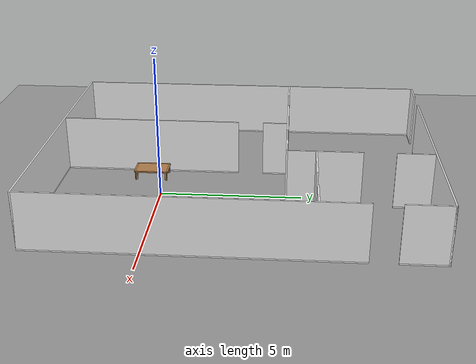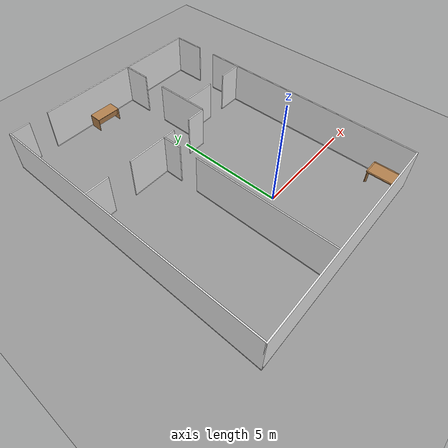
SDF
<sdf version="1.6">
 <world name="default">
  <light name="sun" type="directional">
   <pose>0 0 10 0 -0 0</pose>
   <diffuse>0.8 0.8 0.8 1</diffuse>
   <specular>0.2 0.2 0.2 1</specular>
   <attenuation>
    <range>1000</range>
    <constant>0.9</constant>
    <linear>0.01</linear>
    <quadratic>0.001</quadratic>
   </attenuation>
   <direction>-0.5 0.1 -0.9</direction>
  </light>
  <model name="ground_plane">
   <static>1</static>
   <link name="link">
    <collision name="collision">
     <geometry><plane><normal>0 0 1</normal><size>100 100</size></plane></geometry>
     <surface>
      <contact><collide_bitmask>65535</collide_bitmask></contact>
      <friction><ode><mu>100</mu><mu2>50</mu2></ode></friction>
     </surface>
    </collision>
    <visual name="visual">
     <cast_shadows>0</cast_shadows>
     <geometry><plane><normal>0 0 1</normal><size>100 100</size></plane></geometry>
     <material>
      <script><uri>file://media/materials/scripts/gazebo.material</uri><name>Gazebo/Grey</name></script>
     </material>
    </visual>
   </link>
  </model>
  <gravity>0 0 -9.8</gravity>
  <magnetic_field>6e-06 2.3e-05 -4.2e-05</magnetic_field>
  <atmosphere type="adiabatic"/>
  <physics name="default_physics" default="0" type="ode">
   <max_step_size>0.001</max_step_size>
   <real_time_factor>1</real_time_factor>
   <real_time_update_rate>1000</real_time_update_rate>
  </physics>
  <scene><ambient>0.4 0.4 0.4 1</ambient><background>0.7 0.7 0.7 1</background><shadows>1</shadows></scene>
  <audio><device>default</device></audio>
  <spherical_coordinates>
   <surface_model>EARTH_WGS84</surface_model>
   <latitude_deg>0</latitude_deg>
   <longitude_deg>0</longitude_deg>
   <elevation>0</elevation>
   <heading_deg>0</heading_deg>
  </spherical_coordinates>
  <model name="full_inside_wall">
   <link name="link">
    <inertial>
     <mass>50</mass>
     <inertia><ixx>1</ixx><ixy>0</ixy><ixz>0</ixz><iyy>1</iyy><iyz>0</iyz><izz>1</izz></inertia>
    </inertial>
    <visual name="x05y01_08_bottom_frame">
     <pose>4.075 3.215 0.05 0 -0 0</pose>
     <geometry><box><size>0.055 6.43 0.1</size></box></geometry>
     <material>
      <script><uri>model://base_materials/color/scripts</uri><name>hsr_color/white</name></script>
     </material>
    </visual>
    <collision name="x05y01_08_collision_bottom_frame">
     <pose>4.075 3.215 0.05 0 -0 0</pose>
     <geometry><box><size>0.055 6.43 0.1</size></box></geometry>
    </collision>
    <visual name="x05y01_08_wall">
     <pose>4.075 3.215 1.095 0 -0 0</pose>
     <geometry><box><size>0.055 6.43 1.99</size></box></geometry>
     <material>
      <script>
       <uri>model://base_materials/wall/scripts</uri>
       <uri>model://base_materials/wall/textures</uri>
       <name>wall/white_noise</name>
      </script>
     </material>
    </visual>
    <collision name="x05y01_08_collision_wall">
     <pose>4.075 3.215 1.095 0 -0 0</pose>
     <geometry><box><size>0.055 6.43 1.99</size></box></geometry>
    </collision>
    <visual name="x05y10_bottom_frame">
     <pose>4.075 7.78 0.05 0 -0 0</pose>
     <geometry><box><size>0.055 0.9 0.1</size></box></geometry>
     <material>
      <script><uri>model://base_materials/color/scripts</uri><name>hsr_color/white</name></script>
     </material>
    </visual>
    <collision name="x05y10_collision_bottom_frame">
     <pose>4.075 7.78 0.05 0 -0 0</pose>
     <geometry><box><size>0.055 0.9 0.1</size></box></geometry>
    </collision>
    <visual name="x05y10_wall">
     <pose>4.075 7.78 1.095 0 -0 0</pose>
     <geometry><box><size>0.055 0.9 1.99</size></box></geometry>
     <material>
      <script>
       <uri>model://base_materials/wall/scripts</uri>
       <uri>model://base_materials/wall/textures</uri>
       <name>wall/white_noise</name>
      </script>
     </material>
    </visual>
    <collision name="x05y10_collision_wall">
     <pose>4.075 7.78 1.095 0 -0 0</pose>
     <geometry><box><size>0.055 0.9 1.99</size></box></geometry>
    </collision>
    <visual name="x01_02_y09_bottom_frame">
     <pose>0.55 8.23 0.05 0 -0 1.5708</pose>
     <geometry><box><size>0.055 1.1 0.1</size></box></geometry>
     <material>
      <script><uri>model://base_materials/color/scripts</uri><name>hsr_color/white</name></script>
     </material>
    </visual>
    <collision name="x01_02_y09_collision_bottom_frame">
     <pose>0.55 8.23 0.05 0 -0 1.5708</pose>
     <geometry><box><size>0.055 1.1 0.1</size></box></geometry>
    </collision>
    <visual name="x01_02_y09_wall">
     <pose>0.55 8.23 1.095 0 -0 1.5708</pose>
     <geometry><box><size>0.055 1.1 1.99</size></box></geometry>
     <material>
      <script>
       <uri>model://base_materials/wall/scripts</uri>
       <uri>model://base_materials/wall/textures</uri>
       <name>wall/white_noise</name>
      </script>
     </material>
    </visual>
    <collision name="x01_02_y09_collision_wall">
     <pose>0.55 8.23 1.095 0 -0 1.5708</pose>
     <geometry><box><size>0.055 1.1 1.99</size></box></geometry>
    </collision>
    <visual name="x04_07_y09_bottom_frame">
     <pose>3.42 8.23 0.05 0 -0 1.5708</pose>
     <geometry><box><size>0.055 2.44 0.1</size></box></geometry>
     <material>
      <script><uri>model://base_materials/color/scripts</uri><name>hsr_color/white</name></script>
     </material>
    </visual>
    <collision name="x04_07_y09_collision_bottom_frame">
     <pose>3.42 8.23 0.05 0 -0 1.5708</pose>
     <geometry><box><size>0.055 2.44 0.1</size></box></geometry>
    </collision>
    <visual name="x04_07_y09_wall">
     <pose>3.42 8.23 1.095 0 -0 1.5708</pose>
     <geometry><box><size>0.055 2.44 1.99</size></box></geometry>
     <material>
      <script>
       <uri>model://base_materials/wall/scripts</uri>
       <uri>model://base_materials/wall/textures</uri>
       <name>wall/white_noise</name>
      </script>
     </material>
    </visual>
    <collision name="x04_07_y09_collision_wall">
     <pose>3.42 8.23 1.095 0 -0 1.5708</pose>
     <geometry><box><size>0.055 2.44 1.99</size></box></geometry>
    </collision>
    <visual name="x08y10a_bottom_frame">
     <pose>5.9925 8.23 0.05 0 -0 1.5708</pose>
     <geometry><box><size>0.055 0.9 0.1</size></box></geometry>
     <material>
      <script><uri>model://base_materials/color/scripts</uri><name>hsr_color/white</name></script>
     </material>
    </visual>
    <collision name="x08y10a_collision_bottom_frame">
     <pose>5.9925 8.23 0.05 0 -0 1.5708</pose>
     <geometry><box><size>0.055 0.9 0.1</size></box></geometry>
    </collision>
    <visual name="x08y10a_wall">
     <pose>5.9925 8.23 1.095 0 -0 1.5708</pose>
     <geometry><box><size>0.055 0.9 1.99</size></box></geometry>
     <material>
      <script>
       <uri>model://base_materials/wall/scripts</uri>
       <uri>model://base_materials/wall/textures</uri>
       <name>wall/white_noise</name>
      </script>
     </material>
    </visual>
    <collision name="x08y10a_collision_wall">
     <pose>5.9925 8.23 1.095 0 -0 1.5708</pose>
     <geometry><box><size>0.055 0.9 1.99</size></box></geometry>
    </collision>
    <visual name="x08y10a_bottom_frame">
     <pose>5.9925 8.23 0.05 0 -0 1.5708</pose>
     <geometry><box><size>0.055 0.9 0.1</size></box></geometry>
     <material>
      <script><uri>model://base_materials/color/scripts</uri><name>hsr_color/white</name></script>
     </material>
    </visual>
    <collision name="x08y10a_collision_bottom_frame">
     <pose>5.9925 8.23 0.05 0 -0 1.5708</pose>
     <geometry><box><size>0.055 0.9 0.1</size></box></geometry>
    </collision>
    <visual name="x08y10a_wall">
     <pose>5.9925 8.23 1.095 0 -0 1.5708</pose>
     <geometry><box><size>0.055 0.9 1.99</size></box></geometry>
     <material>
      <script>
       <uri>model://base_materials/wall/scripts</uri>
       <uri>model://base_materials/wall/textures</uri>
       <name>wall/white_noise</name>
      </script>
     </material>
    </visual>
    <collision name="x08y10a_collision_wall">
     <pose>5.9925 8.23 1.095 0 -0 1.5708</pose>
     <geometry><box><size>0.055 0.9 1.99</size></box></geometry>
    </collision>
    <visual name="x08y14_15_bottom_frame">
     <pose>6.47 12.54 0.05 0 -0 0</pose>
     <geometry><box><size>0.055 1.28 0.1</size></box></geometry>
     <material>
      <script><uri>model://base_materials/color/scripts</uri><name>hsr_color/white</name></script>
     </material>
    </visual>
    <collision name="x08y14_15_collision_bottom_frame">
     <pose>6.47 12.54 0.05 0 -0 0</pose>
     <geometry><box><size>0.055 1.28 0.1</size></box></geometry>
    </collision>
    <visual name="x08y14_15_wall">
     <pose>6.47 12.54 1.095 0 -0 0</pose>
     <geometry><box><size>0.055 1.28 1.99</size></box></geometry>
     <material>
      <script>
       <uri>model://base_materials/wall/scripts</uri>
       <uri>model://base_materials/wall/textures</uri>
       <name>wall/white_noise</name>
      </script>
     </material>
    </visual>
    <collision name="x08y14_15_collision_wall">
     <pose>6.47 12.54 1.095 0 -0 0</pose>
     <geometry><box><size>0.055 1.28 1.99</size></box></geometry>
    </collision>
    <visual name="x08y10b_12_bottom_frame">
     <pose>6.47 9.52875 0.05 0 -0 0</pose>
     <geometry><box><size>0.055 2.5425 0.1</size></box></geometry>
     <material>
      <script><uri>model://base_materials/color/scripts</uri><name>hsr_color/white</name></script>
     </material>
    </visual>
    <collision name="x08y10b_12_collision_bottom_frame">
     <pose>6.47 9.52875 0.05 0 -0 0</pose>
     <geometry><box><size>0.055 2.5425 0.1</size></box></geometry>
    </collision>
    <visual name="x08y10b_12_wall">
     <pose>6.47 9.52875 1.095 0 -0 0</pose>
     <geometry><box><size>0.055 2.5425 1.99</size></box></geometry>
     <material>
      <script>
       <uri>model://base_materials/wall/scripts</uri>
       <uri>model://base_materials/wall/textures</uri>
       <name>wall/white_noise</name>
      </script>
     </material>
    </visual>
    <collision name="x08y10b_12_collision_wall">
     <pose>6.47 9.52875 1.095 0 -0 0</pose>
     <geometry><box><size>0.055 2.5425 1.99</size></box></geometry>
    </collision>
    <visual name="x08_09y11b_bottom_frame">
     <pose>7.284 9.23 0.05 0 -0 1.5708</pose>
     <geometry><box><size>0.055 1.632 0.1</size></box></geometry>
     <material>
      <script><uri>model://base_materials/color/scripts</uri><name>hsr_color/white</name></script>
     </material>
    </visual>
    <collision name="x08_09y11b_collision_bottom_frame">
     <pose>7.284 9.23 0.05 0 -0 1.5708</pose>
     <geometry><box><size>0.055 1.632 0.1</size></box></geometry>
    </collision>
    <visual name="x08_09y11b_wall">
     <pose>7.284 9.23 1.095 0 -0 1.5708</pose>
     <geometry><box><size>0.055 1.632 1.99</size></box></geometry>
     <material>
      <script>
       <uri>model://base_materials/wall/scripts</uri>
       <uri>model://base_materials/wall/textures</uri>
       <name>wall/white_noise</name>
      </script>
     </material>
    </visual>
    <collision name="x08_09y11b_collision_wall">
     <pose>7.284 9.23 1.095 0 -0 1.5708</pose>
     <geometry><box><size>0.055 1.632 1.99</size></box></geometry>
    </collision>
    <visual name="x11_12y11_bottom_frame">
     <pose>9.5375 9.23 0.05 0 -0 1.5708</pose>
     <geometry><box><size>0.055 1.075 0.1</size></box></geometry>
     <material>
      <script><uri>model://base_materials/color/scripts</uri><name>hsr_color/white</name></script>
     </material>
    </visual>
    <collision name="x11_12y11_collision_bottom_frame">
     <pose>9.5375 9.23 0.05 0 -0 1.5708</pose>
     <geometry><box><size>0.055 1.075 0.1</size></box></geometry>
    </collision>
    <visual name="x11_12y11_wall">
     <pose>9.5375 9.23 1.095 0 -0 1.5708</pose>
     <geometry><box><size>0.055 1.075 1.99</size></box></geometry>
     <material>
      <script>
       <uri>model://base_materials/wall/scripts</uri>
       <uri>model://base_materials/wall/textures</uri>
       <name>wall/white_noise</name>
      </script>
     </material>
    </visual>
    <collision name="x11_12y11_collision_wall">
     <pose>9.5375 9.23 1.095 0 -0 1.5708</pose>
     <geometry><box><size>0.055 1.075 1.99</size></box></geometry>
    </collision>
    <velocity_decay><linear>0</linear><angular>0</angular></velocity_decay>
   </link>
   <static>1</static>
   <pose>-5.88444 -3.76717 0 0 -0 0</pose>
  </model>
  <model name="full_outside_wall">
   <link name="link">
    <inertial>
     <mass>50</mass>
     <inertia><ixx>1</ixx><ixy>0</ixy><ixz>0</ixz><iyy>1</iyy><iyz>0</iyz><izz>1</izz></inertia>
    </inertial>
    <visual name="x00_13y00_bottom_frame">
     <pose>5.0375 -0.0275 0.05 0 -0 0</pose>
     <geometry><box><size>10.185 0.055 0.1</size></box></geometry>
     <material>
      <script><uri>model://base_materials/color/scripts</uri><name>hsr_color/white</name></script>
     </material>
    </visual>
    <collision name="x00_13y00_collision_bottom_frame">
     <pose>5.0375 -0.0275 0.05 0 -0 0</pose>
     <geometry><box><size>10.185 0.055 0.1</size></box></geometry>
    </collision>
    <visual name="wall_x00_13y00">
     <pose>5.0375 -0.0275 1.095 0 -0 0</pose>
     <geometry><box><size>10.185 0.055 1.99</size></box></geometry>
     <material>
      <script>
       <uri>model://base_materials/wall/scripts</uri>
       <uri>model://base_materials/wall/textures</uri>
       <name>wall/white_noise</name>
      </script>
     </material>
    </visual>
    <collision name="wall_x00_13y00">
     <pose>5.0375 -0.002 1.095 0 -0 0</pose>
     <geometry><box><size>10.08 0.055 1.99</size></box></geometry>
    </collision>
    <visual name="x00y00_15_bottom_frame">
     <pose>-0.0275 6.59 0.05 0 -0 0</pose>
     <geometry><box><size>0.055 13.29 0.1</size></box></geometry>
     <material>
      <script><uri>model://base_materials/color/scripts</uri><name>hsr_color/white</name></script>
     </material>
    </visual>
    <collision name="x00y00_15_collision_bottom_frame">
     <pose>-0.0275 6.59 0.05 0 -0 0</pose>
     <geometry><box><size>0.055 13.29 0.1</size></box></geometry>
    </collision>
    <visual name="wall_x00y00_15">
     <pose>-0.0275 6.59 1.095 0 -0 0</pose>
     <geometry><box><size>0.055 13.29 1.99</size></box></geometry>
     <material>
      <script>
       <uri>model://base_materials/wall/scripts</uri>
       <uri>model://base_materials/wall/textures</uri>
       <name>wall/white_noise</name>
      </script>
     </material>
    </visual>
    <collision name="wall_x00y00_x00y15">
     <pose>-0.002 6.59 1.095 0 -0 0</pose>
     <geometry><box><size>0.002 13.29 1.99</size></box></geometry>
    </collision>
    <visual name="x13y00_12_bottom_frame">
     <pose>10.1025 5.3725 0.05 0 -0 0</pose>
     <geometry><box><size>0.055 10.855 0.1</size></box></geometry>
     <material>
      <script><uri>model://base_materials/color/scripts</uri><name>hsr_color/white</name></script>
     </material>
    </visual>
    <collision name="x13y00_12_collision_bottom_frame">
     <pose>10.1025 5.3725 0.05 0 -0 0</pose>
     <geometry><box><size>0.055 10.855 0.1</size></box></geometry>
    </collision>
    <visual name="wall_x13y00_12">
     <pose>10.1025 5.3725 1.095 0 -0 0</pose>
     <geometry><box><size>0.055 10.855 1.99</size></box></geometry>
     <material>
      <script>
       <uri>model://base_materials/wall/scripts</uri>
       <uri>model://base_materials/wall/textures</uri>
       <name>wall/white_noise</name>
      </script>
     </material>
    </visual>
    <collision name="wall_x13y00_12">
     <pose>10.1025 5.3725 1.095 0 -0 0</pose>
     <geometry><box><size>0.055 10.855 1.99</size></box></geometry>
    </collision>
    <visual name="x13y14_16_bottom_frame">
     <pose>10.1025 12.4675 0.05 0 -0 0</pose>
     <geometry><box><size>0.055 1.535 0.1</size></box></geometry>
     <material>
      <script><uri>model://base_materials/color/scripts</uri><name>hsr_color/white</name></script>
     </material>
    </visual>
    <collision name="x13y14_16_collision_bottom_frame">
     <pose>10.1025 12.4675 0.05 0 -0 0</pose>
     <geometry><box><size>0.055 1.535 0.1</size></box></geometry>
    </collision>
    <visual name="wall_x13y14_x13y16">
     <pose>10.1025 12.4675 1.095 0 -0 0</pose>
     <geometry><box><size>0.055 1.535 1.99</size></box></geometry>
     <material>
      <script>
       <uri>model://base_materials/wall/scripts</uri>
       <uri>model://base_materials/wall/textures</uri>
       <name>wall/white_noise</name>
      </script>
     </material>
    </visual>
    <collision name="wall_x13y14_x13y16">
     <pose>10.1025 12.4675 1.095 0 -0 0</pose>
     <geometry><box><size>0.055 1.535 1.99</size></box></geometry>
    </collision>
    <visual name="x00_01y16_bottom_frame">
     <pose>0.4225 13.2075 0.05 0 -0 0</pose>
     <geometry><box><size>0.955 0.055 0.1</size></box></geometry>
     <material>
      <script><uri>model://base_materials/color/scripts</uri><name>hsr_color/white</name></script>
     </material>
    </visual>
    <collision name="x00_01y16_collision_bottom_frame">
     <pose>0.4225 13.2075 0.05 0 -0 0</pose>
     <geometry><box><size>0.955 0.055 0.1</size></box></geometry>
    </collision>
    <visual name="wall_x00_01y16">
     <pose>0.4225 13.2075 1.095 0 -0 0</pose>
     <geometry><box><size>0.955 0.055 1.99</size></box></geometry>
     <material>
      <script>
       <uri>model://base_materials/wall/scripts</uri>
       <uri>model://base_materials/wall/textures</uri>
       <name>wall/white_noise</name>
      </script>
     </material>
    </visual>
    <collision name="wall_x00_x01y16">
     <pose>0.4225 13.2075 1.095 0 -0 0</pose>
     <geometry><box><size>0.955 0.055 1.99</size></box></geometry>
    </collision>
    <visual name="x03_13y16_bottom_frame">
     <pose>5.965 13.2075 0.05 0 -0 0</pose>
     <geometry><box><size>8.33 0.05 0.1</size></box></geometry>
     <material>
      <script><uri>model://base_materials/color/scripts</uri><name>hsr_color/white</name></script>
     </material>
    </visual>
    <collision name="x03_13y16_collision_bottom_frame">
     <pose>5.965 13.2075 0.05 0 -0 0</pose>
     <geometry><box><size>8.33 0.05 0.1</size></box></geometry>
    </collision>
    <visual name="wall_x03_13y16">
     <pose>5.965 13.2075 1.095 0 -0 0</pose>
     <geometry><box><size>8.33 0.055 1.99</size></box></geometry>
     <material>
      <script>
       <uri>model://base_materials/wall/scripts</uri>
       <uri>model://base_materials/wall/textures</uri>
       <name>wall/white_noise</name>
      </script>
     </material>
    </visual>
    <collision name="wall_x03_13y16">
     <pose>5.965 13.2075 1.095 0 -0 0</pose>
     <geometry><box><size>8.33 0.055 1.99</size></box></geometry>
    </collision>
    <velocity_decay><linear>0</linear><angular>0</angular></velocity_decay>
   </link>
   <static>1</static>
   <pose>-5.88444 -3.76717 0 0 -0 0</pose>
  </model>
  <model name="ground_plane_0">
   <static>1</static>
   <link name="link">
    <collision name="collision">
     <geometry><plane><normal>0 0 1</normal><size>100 100</size></plane></geometry>
     <surface>
      <contact><collide_bitmask>65535</collide_bitmask></contact>
      <friction><ode><mu>100</mu><mu2>50</mu2></ode></friction>
     </surface>
    </collision>
    <visual name="visual">
     <cast_shadows>0</cast_shadows>
     <geometry><plane><normal>0 0 1</normal><size>100 100</size></plane></geometry>
     <material>
      <script><uri>file://media/materials/scripts/gazebo.material</uri><name>Gazebo/Grey</name></script>
     </material>
    </visual>
   </link>
   <pose>-0.601053 -1.96959 0 0 -0 0</pose>
  </model>
  <model name="kitchen_table">
   <link name="link">
    <inertial>
     <mass>10</mass>
     <inertia><ixx>1</ixx><ixy>0</ixy><ixz>0</ixz><iyy>1</iyy><iyz>0</iyz><izz>1</izz></inertia>
    </inertial>
    <visual name="center_board">
     <pose>0 0 0.68 0 -0 0</pose>
     <geometry><box><size>0.68 1.13 0.04</size></box></geometry>
     <material>
      <script><uri>model://base_materials/wood/scripts/wood.material</uri><name>base_materials/wood</name></script>
     </material>
    </visual>
    <collision name="collision_center_board">
     <pose>0 0 0.68 0 -0 0</pose>
     <geometry><box><size>0.68 1.13 0.04</size></box></geometry>
    </collision>
    <visual name="front_board">
     <pose>0.37 0 0.68 0 -0 0</pose>
     <geometry><box><size>0.06 1.13 0.04</size></box></geometry>
     <material>
      <script><uri>model://base_materials/wood/scripts/wood.material</uri><name>base_materials/wood</name></script>
     </material>
    </visual>
    <collision name="collision_front_board">
     <pose>0.37 0 0.68 0 -0 0</pose>
     <geometry><box><size>0.06 1.13 0.04</size></box></geometry>
    </collision>
    <visual name="back_board">
     <pose>-0.37 0 0.68 0 -0 0</pose>
     <geometry><box><size>0.06 1.13 0.04</size></box></geometry>
     <material>
      <script><uri>model://base_materials/wood/scripts/wood.material</uri><name>base_materials/wood</name></script>
     </material>
    </visual>
    <collision name="collision_back_board">
     <pose>-0.37 0 0.68 0 -0 0</pose>
     <geometry><box><size>0.06 1.13 0.04</size></box></geometry>
    </collision>
    <visual name="right_board">
     <pose>0 0.595 0.68 0 -0 0</pose>
     <geometry><box><size>0.68 0.06 0.04</size></box></geometry>
     <material>
      <script><uri>model://base_materials/wood/scripts/wood.material</uri><name>base_materials/wood</name></script>
     </material>
    </visual>
    <collision name="collision_right_board">
     <pose>0 0.595 0.68 0 -0 0</pose>
     <geometry><box><size>0.68 0.06 0.04</size></box></geometry>
    </collision>
    <visual name="left_board">
     <pose>0 -0.595 0.68 0 -0 0</pose>
     <geometry><box><size>0.68 0.06 0.04</size></box></geometry>
     <material>
      <script><uri>model://base_materials/wood/scripts/wood.material</uri><name>base_materials/wood</name></script>
     </material>
    </visual>
    <collision name="collision_left_board">
     <pose>0 -0.595 0.68 0 -0 0</pose>
     <geometry><box><size>0.68 0.06 0.04</size></box></geometry>
    </collision>
    <visual name="front_right_corner_board">
     <pose>0.34 0.565 0.68 0 -0 0</pose>
     <geometry><cylinder><radius>0.06</radius><length>0.039</length></cylinder></geometry>
     <material>
      <script><uri>model://base_materials/wood/scripts/wood.material</uri><name>base_materials/wood</name></script>
     </material>
    </visual>
    <collision name="collision_front_right_corner_board">
     <pose>0.34 0.565 0.68 0 -0 0</pose>
     <geometry><cylinder><radius>0.06</radius><length>0.039</length></cylinder></geometry>
    </collision>
    <visual name="front_left_corner_board">
     <pose>0.34 -0.565 0.68 0 -0 0</pose>
     <geometry><cylinder><radius>0.06</radius><length>0.039</length></cylinder></geometry>
     <material>
      <script><uri>model://base_materials/wood/scripts/wood.material</uri><name>base_materials/wood</name></script>
     </material>
    </visual>
    <collision name="collision_front_left_corner_board">
     <pose>0.34 -0.565 0.68 0 -0 0</pose>
     <geometry><cylinder><radius>0.06</radius><length>0.039</length></cylinder></geometry>
    </collision>
    <visual name="front_back_right_corner_board">
     <pose>-0.34 0.565 0.68 0 -0 0</pose>
     <geometry><cylinder><radius>0.06</radius><length>0.039</length></cylinder></geometry>
     <material>
      <script><uri>model://base_materials/wood/scripts/wood.material</uri><name>base_materials/wood</name></script>
     </material>
    </visual>
    <collision name="collision_back_right_corner_board">
     <pose>-0.34 0.565 0.68 0 -0 0</pose>
     <geometry><cylinder><radius>0.06</radius><length>0.039</length></cylinder></geometry>
    </collision>
    <visual name="front_back_left_corner_board">
     <pose>-0.34 -0.565 0.68 0 -0 0</pose>
     <geometry><cylinder><radius>0.06</radius><length>0.039</length></cylinder></geometry>
     <material>
      <script><uri>model://base_materials/wood/scripts/wood.material</uri><name>base_materials/wood</name></script>
     </material>
    </visual>
    <collision name="collision_back_left_corner_board">
     <pose>-0.34 -0.565 0.68 0 -0 0</pose>
     <geometry><cylinder><radius>0.06</radius><length>0.039</length></cylinder></geometry>
    </collision>
    <visual name="front_left_corner_frame1">
     <pose>0.345858 -0.57086 0.33 0 -0 0</pose>
     <geometry><cylinder><radius>0.02</radius><length>0.66</length></cylinder></geometry>
     <material>
      <script><uri>model://base_materials/wood/scripts/wood.material</uri><name>base_materials/wood</name></script>
     </material>
    </visual>
    <collision name="collision_front_left_corner_frame1">
     <pose>0.345858 -0.57086 0.33 0 -0 0</pose>
     <geometry><cylinder><radius>0.02</radius><length>0.66</length></cylinder></geometry>
    </collision>
    <visual name="front_left_corner_frame2">
     <pose>0.317574 -0.54257 0.33 0 -0 0.7854</pose>
     <geometry><box><size>0.04 0.08 0.66</size></box></geometry>
     <material>
      <script><uri>model://base_materials/wood/scripts/wood.material</uri><name>base_materials/wood</name></script>
     </material>
    </visual>
    <collision name="collision_front_left_corner_frame2">
     <pose>0.317574 -0.54257 0.33 0 -0 0.7854</pose>
     <geometry><box><size>0.04 0.08 0.66</size></box></geometry>
    </collision>
    <visual name="front_left_corner_frame3">
     <pose>0.289289 -0.51429 0.33 0 -0 0</pose>
     <geometry><cylinder><radius>0.02</radius><length>0.66</length></cylinder></geometry>
     <material>
      <script><uri>model://base_materials/wood/scripts/wood.material</uri><name>base_materials/wood</name></script>
     </material>
    </visual>
    <collision name="collision_front_left_corner_frame3">
     <pose>0.289289 -0.51429 0.33 0 -0 0</pose>
     <geometry><cylinder><radius>0.02</radius><length>0.66</length></cylinder></geometry>
    </collision>
    <visual name="front_right_corner_frame1">
     <pose>0.345858 0.57086 0.33 0 -0 0</pose>
     <geometry><cylinder><radius>0.02</radius><length>0.66</length></cylinder></geometry>
     <material>
      <script><uri>model://base_materials/wood/scripts/wood.material</uri><name>base_materials/wood</name></script>
     </material>
    </visual>
    <collision name="collision_front_right_corner_frame1">
     <pose>0.345858 0.57086 0.33 0 -0 0</pose>
     <geometry><cylinder><radius>0.02</radius><length>0.66</length></cylinder></geometry>
    </collision>
    <visual name="front_right_corner_frame2">
     <pose>0.317574 0.54257 0.33 0 0 -0.7854</pose>
     <geometry><box><size>0.04 0.08 0.66</size></box></geometry>
     <material>
      <script><uri>model://base_materials/wood/scripts/wood.material</uri><name>base_materials/wood</name></script>
     </material>
    </visual>
    <collision name="collision_front_right_corner_frame2">
     <pose>0.317574 0.54257 0.33 0 0 -0.7854</pose>
     <geometry><box><size>0.04 0.08 0.66</size></box></geometry>
    </collision>
    <visual name="front_right_corner_frame3">
     <pose>0.289289 0.51429 0.33 0 -0 0</pose>
     <geometry><cylinder><radius>0.02</radius><length>0.66</length></cylinder></geometry>
     <material>
      <script><uri>model://base_materials/wood/scripts/wood.material</uri><name>base_materials/wood</name></script>
     </material>
    </visual>
    <collision name="collision_front_right_corner_frame3">
     <pose>0.289289 0.51429 0.33 0 -0 0</pose>
     <geometry><cylinder><radius>0.02</radius><length>0.66</length></cylinder></geometry>
    </collision>
    <visual name="back_left_corner_frame1">
     <pose>-0.345858 -0.57086 0.33 0 -0 0</pose>
     <geometry><cylinder><radius>0.02</radius><length>0.66</length></cylinder></geometry>
     <material>
      <script><uri>model://base_materials/wood/scripts/wood.material</uri><name>base_materials/wood</name></script>
     </material>
    </visual>
    <collision name="collision_back_left_corner_frame1">
     <pose>-0.345858 -0.57086 0.33 0 -0 0</pose>
     <geometry><cylinder><radius>0.02</radius><length>0.66</length></cylinder></geometry>
    </collision>
    <visual name="back_left_corner_frame2">
     <pose>-0.317574 -0.54257 0.33 0 0 -0.7854</pose>
     <geometry><box><size>0.04 0.08 0.66</size></box></geometry>
     <material>
      <script><uri>model://base_materials/wood/scripts/wood.material</uri><name>base_materials/wood</name></script>
     </material>
    </visual>
    <collision name="collision_back_left_corner_frame2">
     <pose>-0.317574 -0.54257 0.33 0 0 -0.7854</pose>
     <geometry><box><size>0.04 0.08 0.66</size></box></geometry>
    </collision>
    <visual name="back_left_corner_frame3">
     <pose>-0.289289 -0.51429 0.33 0 -0 0</pose>
     <geometry><cylinder><radius>0.02</radius><length>0.66</length></cylinder></geometry>
     <material>
      <script><uri>model://base_materials/wood/scripts/wood.material</uri><name>base_materials/wood</name></script>
     </material>
    </visual>
    <collision name="collision_back_left_corner_frame3">
     <pose>-0.289289 -0.51429 0.33 0 -0 0</pose>
     <geometry><cylinder><radius>0.02</radius><length>0.66</length></cylinder></geometry>
    </collision>
    <visual name="back_right_corner_frame1">
     <pose>-0.345858 0.57086 0.33 0 -0 0</pose>
     <geometry><cylinder><radius>0.02</radius><length>0.66</length></cylinder></geometry>
     <material>
      <script><uri>model://base_materials/wood/scripts/wood.material</uri><name>base_materials/wood</name></script>
     </material>
    </visual>
    <collision name="collision_back_right_corner_frame1">
     <pose>-0.345858 0.57086 0.33 0 -0 0</pose>
     <geometry><cylinder><radius>0.02</radius><length>0.66</length></cylinder></geometry>
    </collision>
    <visual name="back_right_corner_frame2">
     <pose>-0.317574 0.54257 0.33 0 -0 0.7854</pose>
     <geometry><box><size>0.04 0.08 0.66</size></box></geometry>
     <material>
      <script><uri>model://base_materials/wood/scripts/wood.material</uri><name>base_materials/wood</name></script>
     </material>
    </visual>
    <collision name="collision_back_right_corner_frame2">
     <pose>-0.317574 0.54257 0.33 0 -0 0.7854</pose>
     <geometry><box><size>0.04 0.08 0.66</size></box></geometry>
    </collision>
    <visual name="back_right_corner_frame3">
     <pose>-0.289289 0.51429 0.33 0 -0 0</pose>
     <geometry><cylinder><radius>0.02</radius><length>0.66</length></cylinder></geometry>
     <material>
      <script><uri>model://base_materials/wood/scripts/wood.material</uri><name>base_materials/wood</name></script>
     </material>
    </visual>
    <collision name="collision_back_right_corner_frame3">
     <pose>-0.289289 0.51429 0.33 0 -0 0</pose>
     <geometry><cylinder><radius>0.02</radius><length>0.66</length></cylinder></geometry>
    </collision>
    <velocity_decay><linear>0</linear><angular>0</angular></velocity_decay>
   </link>
   <static>1</static>
   <pose>3.73824 -2.98608 0 0 -0 0</pose>
  </model>
  <model name="kitchen_lowtable">
   <link name="link">
    <inertial>
     <mass>10</mass>
     <inertia><ixx>1</ixx><ixy>0</ixy><ixz>0</ixz><iyy>1</iyy><iyz>0</iyz><izz>1</izz></inertia>
    </inertial>
    <visual name="center_board">
     <pose>0 0 0.38 0 -0 0</pose>
     <geometry><box><size>0.68 1.13 0.04</size></box></geometry>
     <material>
      <script><uri>model://base_materials/wood/scripts/wood.material</uri><name>base_materials/wood</name></script>
     </material>
    </visual>
    <collision name="collision_center_board">
     <pose>0 0 0.38 0 -0 0</pose>
     <geometry><box><size>0.68 1.13 0.04</size></box></geometry>
    </collision>
    <visual name="front_board">
     <pose>0.37 0 0.38 0 -0 0</pose>
     <geometry><box><size>0.06 1.13 0.04</size></box></geometry>
     <material>
      <script><uri>model://base_materials/wood/scripts/wood.material</uri><name>base_materials/wood</name></script>
     </material>
    </visual>
    <collision name="collision_front_board">
     <pose>0.37 0 0.38 0 -0 0</pose>
     <geometry><box><size>0.06 1.13 0.04</size></box></geometry>
    </collision>
    <visual name="back_board">
     <pose>-0.37 0 0.38 0 -0 0</pose>
     <geometry><box><size>0.06 1.13 0.04</size></box></geometry>
     <material>
      <script><uri>model://base_materials/wood/scripts/wood.material</uri><name>base_materials/wood</name></script>
     </material>
    </visual>
    <collision name="collision_back_board">
     <pose>-0.37 0 0.38 0 -0 0</pose>
     <geometry><box><size>0.06 1.13 0.04</size></box></geometry>
    </collision>
    <visual name="right_board">
     <pose>0 0.595 0.38 0 -0 0</pose>
     <geometry><box><size>0.68 0.06 0.04</size></box></geometry>
     <material>
      <script><uri>model://base_materials/wood/scripts/wood.material</uri><name>base_materials/wood</name></script>
     </material>
    </visual>
    <collision name="collision_right_board">
     <pose>0 0.595 0.38 0 -0 0</pose>
     <geometry><box><size>0.68 0.06 0.04</size></box></geometry>
    </collision>
    <visual name="left_board">
     <pose>0 -0.595 0.38 0 -0 0</pose>
     <geometry><box><size>0.68 0.06 0.04</size></box></geometry>
     <material>
      <script><uri>model://base_materials/wood/scripts/wood.material</uri><name>base_materials/wood</name></script>
     </material>
    </visual>
    <collision name="collision_left_board">
     <pose>0 -0.595 0.38 0 -0 0</pose>
     <geometry><box><size>0.68 0.06 0.04</size></box></geometry>
    </collision>
    <visual name="front_right_corner_board">
     <pose>0.34 0.565 0.38 0 -0 0</pose>
     <geometry><cylinder><radius>0.06</radius><length>0.039</length></cylinder></geometry>
     <material>
      <script><uri>model://base_materials/wood/scripts/wood.material</uri><name>base_materials/wood</name></script>
     </material>
    </visual>
    <collision name="collision_front_right_corner_board">
     <pose>0.34 0.565 0.38 0 -0 0</pose>
     <geometry><cylinder><radius>0.06</radius><length>0.039</length></cylinder></geometry>
    </collision>
    <visual name="front_left_corner_board">
     <pose>0.34 -0.565 0.38 0 -0 0</pose>
     <geometry><cylinder><radius>0.06</radius><length>0.039</length></cylinder></geometry>
     <material>
      <script><uri>model://base_materials/wood/scripts/wood.material</uri><name>base_materials/wood</name></script>
     </material>
    </visual>
    <collision name="collision_front_left_corner_board">
     <pose>0.34 -0.565 0.38 0 -0 0</pose>
     <geometry><cylinder><radius>0.06</radius><length>0.039</length></cylinder></geometry>
    </collision>
    <visual name="front_back_right_corner_board">
     <pose>-0.34 0.565 0.38 0 -0 0</pose>
     <geometry><cylinder><radius>0.06</radius><length>0.039</length></cylinder></geometry>
     <material>
      <script><uri>model://base_materials/wood/scripts/wood.material</uri><name>base_materials/wood</name></script>
     </material>
    </visual>
    <collision name="collision_back_right_corner_board">
     <pose>-0.34 0.565 0.38 0 -0 0</pose>
     <geometry><cylinder><radius>0.06</radius><length>0.039</length></cylinder></geometry>
    </collision>
    <visual name="front_back_left_corner_board">
     <pose>-0.34 -0.565 0.38 0 -0 0</pose>
     <geometry><cylinder><radius>0.06</radius><length>0.039</length></cylinder></geometry>
     <material>
      <script><uri>model://base_materials/wood/scripts/wood.material</uri><name>base_materials/wood</name></script>
     </material>
    </visual>
    <collision name="collision_back_left_corner_board">
     <pose>-0.34 -0.565 0.38 0 -0 0</pose>
     <geometry><cylinder><radius>0.06</radius><length>0.039</length></cylinder></geometry>
    </collision>
    <visual name="front_left_corner_frame1">
     <pose>0.345858 -0.57086 0.18 0 -0 0</pose>
     <geometry><cylinder><radius>0.02</radius><length>0.36</length></cylinder></geometry>
     <material>
      <script><uri>model://base_materials/wood/scripts/wood.material</uri><name>base_materials/wood</name></script>
     </material>
    </visual>
    <collision name="collision_front_left_corner_frame1">
     <pose>0.345858 -0.57086 0.18 0 -0 0</pose>
     <geometry><cylinder><radius>0.02</radius><length>0.36</length></cylinder></geometry>
    </collision>
    <visual name="front_left_corner_frame2">
     <pose>0.317574 -0.54257 0.18 0 -0 0.7854</pose>
     <geometry><box><size>0.04 0.08 0.36</size></box></geometry>
     <material>
      <script><uri>model://base_materials/wood/scripts/wood.material</uri><name>base_materials/wood</name></script>
     </material>
    </visual>
    <collision name="collision_front_left_corner_frame2">
     <pose>0.317574 -0.54257 0.18 0 -0 0.7854</pose>
     <geometry><box><size>0.04 0.08 0.36</size></box></geometry>
    </collision>
    <visual name="front_left_corner_frame3">
     <pose>0.289289 -0.51429 0.18 0 -0 0</pose>
     <geometry><cylinder><radius>0.02</radius><length>0.36</length></cylinder></geometry>
     <material>
      <script><uri>model://base_materials/wood/scripts/wood.material</uri><name>base_materials/wood</name></script>
     </material>
    </visual>
    <collision name="collision_front_left_corner_frame3">
     <pose>0.289289 -0.51429 0.18 0 -0 0</pose>
     <geometry><cylinder><radius>0.02</radius><length>0.36</length></cylinder></geometry>
    </collision>
    <visual name="front_right_corner_frame1">
     <pose>0.345858 0.57086 0.18 0 -0 0</pose>
     <geometry><cylinder><radius>0.02</radius><length>0.36</length></cylinder></geometry>
     <material>
      <script><uri>model://base_materials/wood/scripts/wood.material</uri><name>base_materials/wood</name></script>
     </material>
    </visual>
    <collision name="collision_front_right_corner_frame1">
     <pose>0.345858 0.57086 0.18 0 -0 0</pose>
     <geometry><cylinder><radius>0.02</radius><length>0.36</length></cylinder></geometry>
    </collision>
    <visual name="front_right_corner_frame2">
     <pose>0.317574 0.54257 0.18 0 0 -0.7854</pose>
     <geometry><box><size>0.04 0.08 0.36</size></box></geometry>
     <material>
      <script><uri>model://base_materials/wood/scripts/wood.material</uri><name>base_materials/wood</name></script>
     </material>
    </visual>
    <collision name="collision_front_right_corner_frame2">
     <pose>0.317574 0.54257 0.18 0 0 -0.7854</pose>
     <geometry><box><size>0.04 0.08 0.36</size></box></geometry>
    </collision>
    <visual name="front_right_corner_frame3">
     <pose>0.289289 0.51429 0.18 0 -0 0</pose>
     <geometry><cylinder><radius>0.02</radius><length>0.36</length></cylinder></geometry>
     <material>
      <script><uri>model://base_materials/wood/scripts/wood.material</uri><name>base_materials/wood</name></script>
     </material>
    </visual>
    <collision name="collision_front_right_corner_frame3">
     <pose>0.289289 0.51429 0.18 0 -0 0</pose>
     <geometry><cylinder><radius>0.02</radius><length>0.36</length></cylinder></geometry>
    </collision>
    <visual name="back_left_corner_frame1">
     <pose>-0.345858 -0.57086 0.18 0 -0 0</pose>
     <geometry><cylinder><radius>0.02</radius><length>0.36</length></cylinder></geometry>
     <material>
      <script><uri>model://base_materials/wood/scripts/wood.material</uri><name>base_materials/wood</name></script>
     </material>
    </visual>
    <collision name="collision_back_left_corner_frame1">
     <pose>-0.345858 -0.57086 0.18 0 -0 0</pose>
     <geometry><cylinder><radius>0.02</radius><length>0.36</length></cylinder></geometry>
    </collision>
    <visual name="back_left_corner_frame2">
     <pose>-0.317574 -0.54257 0.18 0 0 -0.7854</pose>
     <geometry><box><size>0.04 0.08 0.36</size></box></geometry>
     <material>
      <script><uri>model://base_materials/wood/scripts/wood.material</uri><name>base_materials/wood</name></script>
     </material>
    </visual>
    <collision name="collision_back_left_corner_frame2">
     <pose>-0.317574 -0.54257 0.18 0 0 -0.7854</pose>
     <geometry><box><size>0.04 0.08 0.36</size></box></geometry>
    </collision>
    <visual name="back_left_corner_frame3">
     <pose>-0.289289 -0.51429 0.18 0 -0 0</pose>
     <geometry><cylinder><radius>0.02</radius><length>0.36</length></cylinder></geometry>
     <material>
      <script><uri>model://base_materials/wood/scripts/wood.material</uri><name>base_materials/wood</name></script>
     </material>
    </visual>
    <collision name="collision_back_left_corner_frame3">
     <pose>-0.289289 -0.51429 0.18 0 -0 0</pose>
     <geometry><cylinder><radius>0.02</radius><length>0.36</length></cylinder></geometry>
    </collision>
    <visual name="back_right_corner_frame1">
     <pose>-0.345858 0.57086 0.18 0 -0 0</pose>
     <geometry><cylinder><radius>0.02</radius><length>0.36</length></cylinder></geometry>
     <material>
      <script><uri>model://base_materials/wood/scripts/wood.material</uri><name>base_materials/wood</name></script>
     </material>
    </visual>
    <collision name="collision_back_right_corner_frame1">
     <pose>-0.345858 0.57086 0.18 0 -0 0</pose>
     <geometry><cylinder><radius>0.02</radius><length>0.36</length></cylinder></geometry>
    </collision>
    <visual name="back_right_corner_frame2">
     <pose>-0.317574 0.54257 0.18 0 -0 0.7854</pose>
     <geometry><box><size>0.04 0.08 0.36</size></box></geometry>
     <material>
      <script><uri>model://base_materials/wood/scripts/wood.material</uri><name>base_materials/wood</name></script>
     </material>
    </visual>
    <collision name="collision_back_right_corner_frame2">
     <pose>-0.317574 0.54257 0.18 0 -0 0.7854</pose>
     <geometry><box><size>0.04 0.08 0.36</size></box></geometry>
    </collision>
    <visual name="back_right_corner_frame3">
     <pose>-0.289289 0.51429 0.18 0 -0 0</pose>
     <geometry><cylinder><radius>0.02</radius><length>0.36</length></cylinder></geometry>
     <material>
      <script><uri>model://base_materials/wood/scripts/wood.material</uri><name>base_materials/wood</name></script>
     </material>
    </visual>
    <collision name="collision_back_right_corner_frame3">
     <pose>-0.289289 0.51429 0.18 0 -0 0</pose>
     <geometry><cylinder><radius>0.02</radius><length>0.36</length></cylinder></geometry>
    </collision>
    <velocity_decay><linear>0</linear><angular>0</angular></velocity_decay>
   </link>
   <static>1</static>
   <pose>-1.30353 -0.506103 0 0 -0 0</pose>
  </model>
  <model name="office_desk">
   <link name="link">
    <inertial>
     <mass>10</mass>
     <inertia><ixx>1</ixx><ixy>0</ixy><ixz>0</ixz><iyy>1</iyy><iyz>0</iyz><izz>1</izz></inertia>
    </inertial>
    <visual name="top_board">
     <pose>-0.3 0.6 0.69 0 -0 0</pose>
     <geometry><box><size>0.6 1.2 0.02</size></box></geometry>
     <material>
      <script>
       <uri>model://base_materials/wood/scripts/wood.material</uri>
       <name>base_materials/dark_wood</name>
      </script>
     </material>
    </visual>
    <collision name="collision_top_board">
     <pose>-0.3 0.6 0.69 0 -0 0</pose>
     <geometry><box><size>0.6 1.2 0.02</size></box></geometry>
    </collision>
    <visual name="left_board">
     <pose>-0.3 0.01 0.34 0 -0 0</pose>
     <geometry><box><size>0.6 0.02 0.68</size></box></geometry>
     <material>
      <script>
       <uri>model://base_materials/wood/scripts/wood.material</uri>
       <name>base_materials/dark_wood</name>
      </script>
     </material>
    </visual>
    <collision name="collision_left_board">
     <pose>-0.3 0.01 0.34 0 -0 0</pose>
     <geometry><box><size>0.6 0.02 0.68</size></box></geometry>
    </collision>
    <visual name="right_board">
     <pose>-0.3 1.19 0.34 0 -0 0</pose>
     <geometry><box><size>0.6 0.02 0.68</size></box></geometry>
     <material>
      <script>
       <uri>model://base_materials/wood/scripts/wood.material</uri>
       <name>base_materials/dark_wood</name>
      </script>
     </material>
    </visual>
    <collision name="collision_right_board">
     <pose>-0.3 1.19 0.34 0 -0 0</pose>
     <geometry><box><size>0.6 0.02 0.68</size></box></geometry>
    </collision>
    <visual name="center_board">
     <pose>-0.14 0.6 0.49 0 -0 0</pose>
     <geometry><box><size>0.02 1.16 0.4</size></box></geometry>
     <material>
      <script>
       <uri>model://base_materials/wood/scripts/wood.material</uri>
       <name>base_materials/dark_wood</name>
      </script>
     </material>
    </visual>
    <collision name="ollision_center_board">
     <pose>-0.14 0.6 0.49 0 -0 0</pose>
     <geometry><box><size>0.02 1.16 0.4</size></box></geometry>
    </collision>
    <velocity_decay><linear>0</linear><angular>0</angular></velocity_decay>
   </link>
   <static>1</static>
   <pose>-2.05431 8.78352 0 0 0 -1.5877</pose>
  </model>
 </world>
</sdf>
